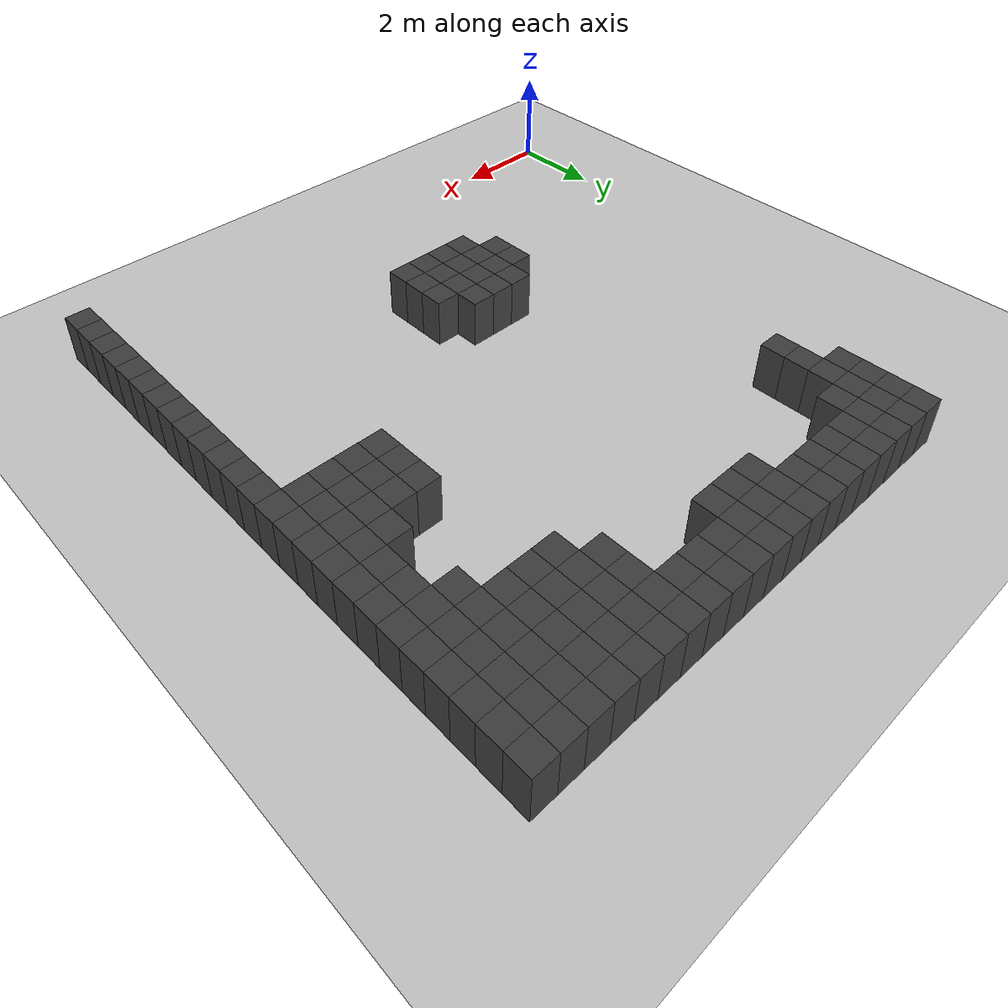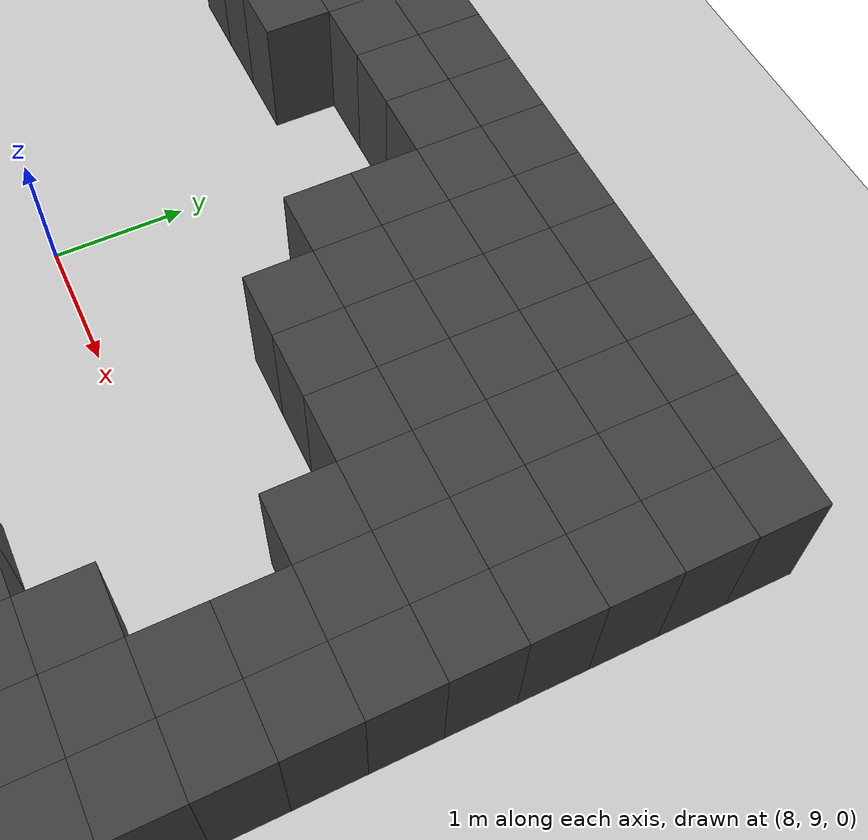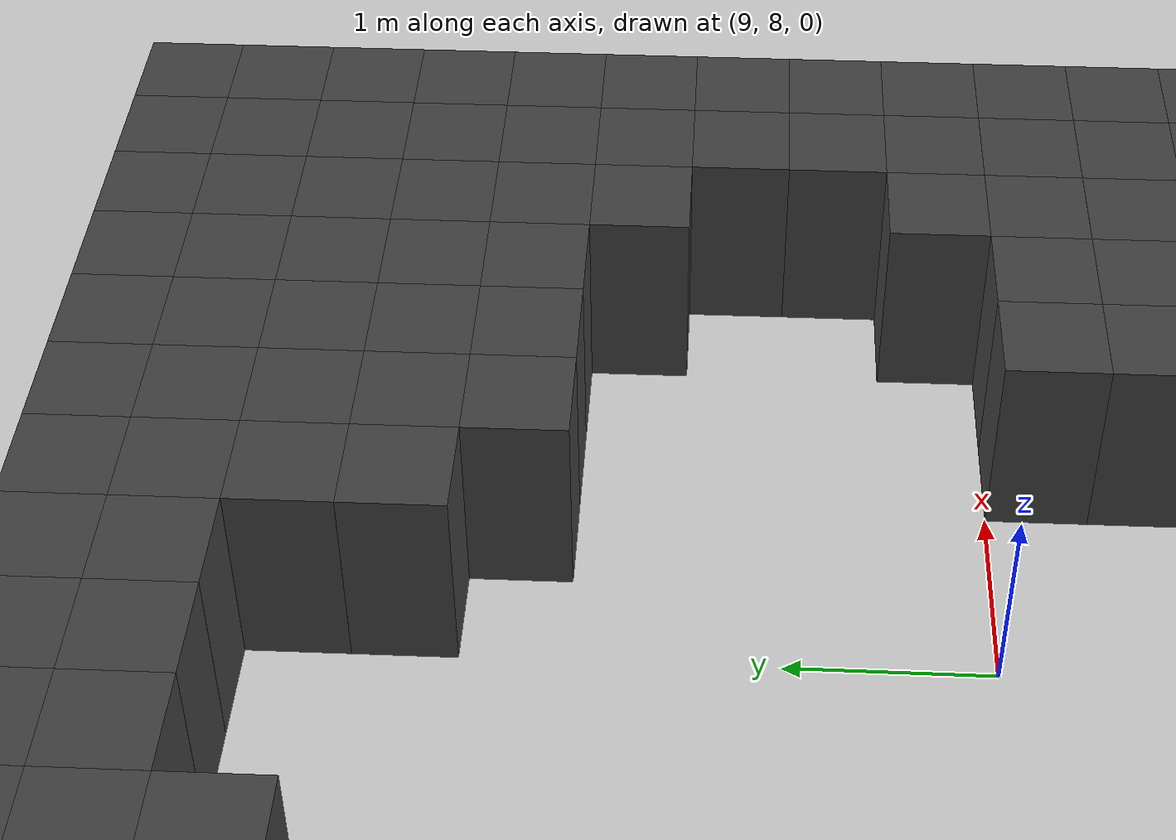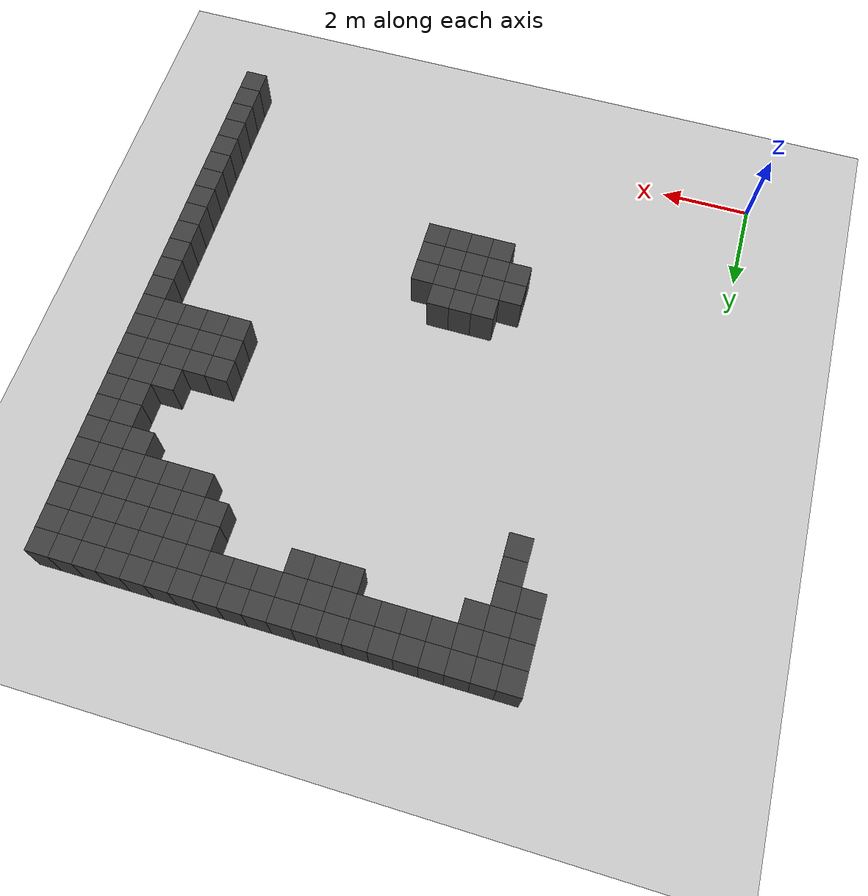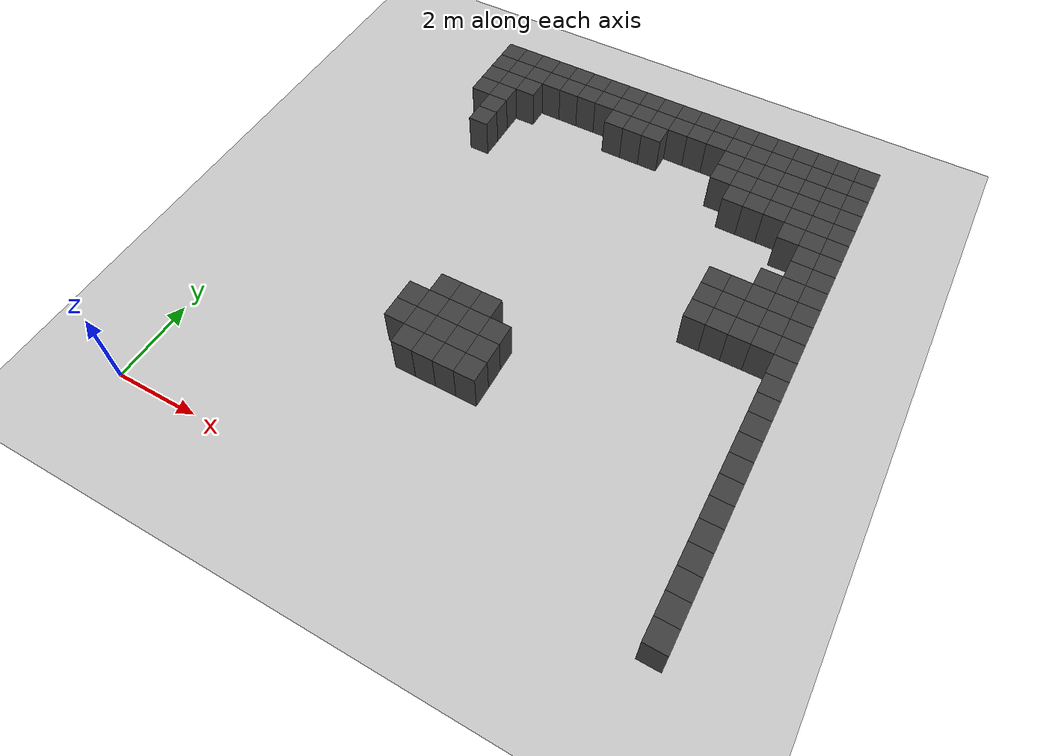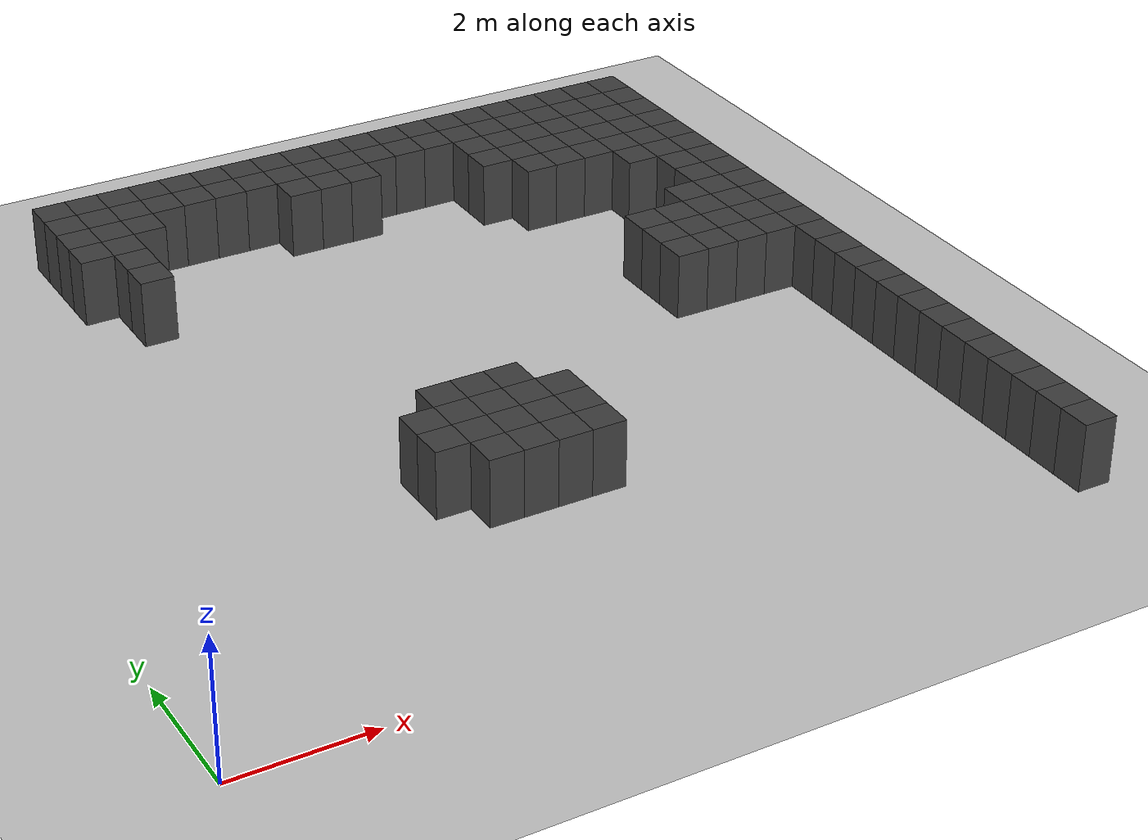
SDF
<sdf version="1.7">
 <world name="map_9082">
  <model name="ground_plane">
   <static>true</static>
   <link name="link">
    <collision name="collision">
     <geometry><plane><normal>0 0 1</normal><size>200 200</size></plane></geometry>
    </collision>
    <visual name="visual">
     <geometry><plane><normal>0 0 1</normal><size>200 200</size></plane></geometry>
     <material><ambient>0.8 0.8 0.8 1</ambient><diffuse>0.8 0.8 0.8 1</diffuse></material>
    </visual>
   </link>
  </model>
  <model name="maze_environment">
   <static>true</static>
   <link name="wall_30">
    <pose>2.750 12.250 0.500 0 0 0</pose>
    <collision name="col"><geometry><box><size>0.5 0.5 1.0</size></box></geometry></collision>
    <visual name="vis">
     <geometry><box><size>0.5 0.5 1.0</size></box></geometry>
     <material><ambient>0.15 0.15 0.15 1</ambient><diffuse>0.25 0.25 0.25 1</diffuse></material>
    </visual>
   </link>
   <link name="wall_31">
    <pose>3.250 12.250 0.500 0 0 0</pose>
    <collision name="col"><geometry><box><size>0.5 0.5 1.0</size></box></geometry></collision>
    <visual name="vis">
     <geometry><box><size>0.5 0.5 1.0</size></box></geometry>
     <material><ambient>0.15 0.15 0.15 1</ambient><diffuse>0.25 0.25 0.25 1</diffuse></material>
    </visual>
   </link>
   <link name="wall_32">
    <pose>3.750 12.250 0.500 0 0 0</pose>
    <collision name="col"><geometry><box><size>0.5 0.5 1.0</size></box></geometry></collision>
    <visual name="vis">
     <geometry><box><size>0.5 0.5 1.0</size></box></geometry>
     <material><ambient>0.15 0.15 0.15 1</ambient><diffuse>0.25 0.25 0.25 1</diffuse></material>
    </visual>
   </link>
   <link name="wall_33">
    <pose>4.250 12.250 0.500 0 0 0</pose>
    <collision name="col"><geometry><box><size>0.5 0.5 1.0</size></box></geometry></collision>
    <visual name="vis">
     <geometry><box><size>0.5 0.5 1.0</size></box></geometry>
     <material><ambient>0.15 0.15 0.15 1</ambient><diffuse>0.25 0.25 0.25 1</diffuse></material>
    </visual>
   </link>
   <link name="wall_34">
    <pose>4.750 12.250 0.500 0 0 0</pose>
    <collision name="col"><geometry><box><size>0.5 0.5 1.0</size></box></geometry></collision>
    <visual name="vis">
     <geometry><box><size>0.5 0.5 1.0</size></box></geometry>
     <material><ambient>0.15 0.15 0.15 1</ambient><diffuse>0.25 0.25 0.25 1</diffuse></material>
    </visual>
   </link>
   <link name="wall_35">
    <pose>5.250 12.250 0.500 0 0 0</pose>
    <collision name="col"><geometry><box><size>0.5 0.5 1.0</size></box></geometry></collision>
    <visual name="vis">
     <geometry><box><size>0.5 0.5 1.0</size></box></geometry>
     <material><ambient>0.15 0.15 0.15 1</ambient><diffuse>0.25 0.25 0.25 1</diffuse></material>
    </visual>
   </link>
   <link name="wall_36">
    <pose>5.750 12.250 0.500 0 0 0</pose>
    <collision name="col"><geometry><box><size>0.5 0.5 1.0</size></box></geometry></collision>
    <visual name="vis">
     <geometry><box><size>0.5 0.5 1.0</size></box></geometry>
     <material><ambient>0.15 0.15 0.15 1</ambient><diffuse>0.25 0.25 0.25 1</diffuse></material>
    </visual>
   </link>
   <link name="wall_37">
    <pose>6.250 12.250 0.500 0 0 0</pose>
    <collision name="col"><geometry><box><size>0.5 0.5 1.0</size></box></geometry></collision>
    <visual name="vis">
     <geometry><box><size>0.5 0.5 1.0</size></box></geometry>
     <material><ambient>0.15 0.15 0.15 1</ambient><diffuse>0.25 0.25 0.25 1</diffuse></material>
    </visual>
   </link>
   <link name="wall_38">
    <pose>6.750 12.250 0.500 0 0 0</pose>
    <collision name="col"><geometry><box><size>0.5 0.5 1.0</size></box></geometry></collision>
    <visual name="vis">
     <geometry><box><size>0.5 0.5 1.0</size></box></geometry>
     <material><ambient>0.15 0.15 0.15 1</ambient><diffuse>0.25 0.25 0.25 1</diffuse></material>
    </visual>
   </link>
   <link name="wall_39">
    <pose>7.250 12.250 0.500 0 0 0</pose>
    <collision name="col"><geometry><box><size>0.5 0.5 1.0</size></box></geometry></collision>
    <visual name="vis">
     <geometry><box><size>0.5 0.5 1.0</size></box></geometry>
     <material><ambient>0.15 0.15 0.15 1</ambient><diffuse>0.25 0.25 0.25 1</diffuse></material>
    </visual>
   </link>
   <link name="wall_40">
    <pose>7.750 12.250 0.500 0 0 0</pose>
    <collision name="col"><geometry><box><size>0.5 0.5 1.0</size></box></geometry></collision>
    <visual name="vis">
     <geometry><box><size>0.5 0.5 1.0</size></box></geometry>
     <material><ambient>0.15 0.15 0.15 1</ambient><diffuse>0.25 0.25 0.25 1</diffuse></material>
    </visual>
   </link>
   <link name="wall_41">
    <pose>8.250 12.250 0.500 0 0 0</pose>
    <collision name="col"><geometry><box><size>0.5 0.5 1.0</size></box></geometry></collision>
    <visual name="vis">
     <geometry><box><size>0.5 0.5 1.0</size></box></geometry>
     <material><ambient>0.15 0.15 0.15 1</ambient><diffuse>0.25 0.25 0.25 1</diffuse></material>
    </visual>
   </link>
   <link name="wall_42">
    <pose>8.750 12.250 0.500 0 0 0</pose>
    <collision name="col"><geometry><box><size>0.5 0.5 1.0</size></box></geometry></collision>
    <visual name="vis">
     <geometry><box><size>0.5 0.5 1.0</size></box></geometry>
     <material><ambient>0.15 0.15 0.15 1</ambient><diffuse>0.25 0.25 0.25 1</diffuse></material>
    </visual>
   </link>
   <link name="wall_43">
    <pose>9.250 12.250 0.500 0 0 0</pose>
    <collision name="col"><geometry><box><size>0.5 0.5 1.0</size></box></geometry></collision>
    <visual name="vis">
     <geometry><box><size>0.5 0.5 1.0</size></box></geometry>
     <material><ambient>0.15 0.15 0.15 1</ambient><diffuse>0.25 0.25 0.25 1</diffuse></material>
    </visual>
   </link>
   <link name="wall_44">
    <pose>9.750 12.250 0.500 0 0 0</pose>
    <collision name="col"><geometry><box><size>0.5 0.5 1.0</size></box></geometry></collision>
    <visual name="vis">
     <geometry><box><size>0.5 0.5 1.0</size></box></geometry>
     <material><ambient>0.15 0.15 0.15 1</ambient><diffuse>0.25 0.25 0.25 1</diffuse></material>
    </visual>
   </link>
   <link name="wall_45">
    <pose>10.250 12.250 0.500 0 0 0</pose>
    <collision name="col"><geometry><box><size>0.5 0.5 1.0</size></box></geometry></collision>
    <visual name="vis">
     <geometry><box><size>0.5 0.5 1.0</size></box></geometry>
     <material><ambient>0.15 0.15 0.15 1</ambient><diffuse>0.25 0.25 0.25 1</diffuse></material>
    </visual>
   </link>
   <link name="wall_46">
    <pose>10.750 12.250 0.500 0 0 0</pose>
    <collision name="col"><geometry><box><size>0.5 0.5 1.0</size></box></geometry></collision>
    <visual name="vis">
     <geometry><box><size>0.5 0.5 1.0</size></box></geometry>
     <material><ambient>0.15 0.15 0.15 1</ambient><diffuse>0.25 0.25 0.25 1</diffuse></material>
    </visual>
   </link>
   <link name="wall_47">
    <pose>11.250 12.250 0.500 0 0 0</pose>
    <collision name="col"><geometry><box><size>0.5 0.5 1.0</size></box></geometry></collision>
    <visual name="vis">
     <geometry><box><size>0.5 0.5 1.0</size></box></geometry>
     <material><ambient>0.15 0.15 0.15 1</ambient><diffuse>0.25 0.25 0.25 1</diffuse></material>
    </visual>
   </link>
   <link name="wall_48">
    <pose>11.750 12.250 0.500 0 0 0</pose>
    <collision name="col"><geometry><box><size>0.5 0.5 1.0</size></box></geometry></collision>
    <visual name="vis">
     <geometry><box><size>0.5 0.5 1.0</size></box></geometry>
     <material><ambient>0.15 0.15 0.15 1</ambient><diffuse>0.25 0.25 0.25 1</diffuse></material>
    </visual>
   </link>
   <link name="wall_49">
    <pose>12.250 12.250 0.500 0 0 0</pose>
    <collision name="col"><geometry><box><size>0.5 0.5 1.0</size></box></geometry></collision>
    <visual name="vis">
     <geometry><box><size>0.5 0.5 1.0</size></box></geometry>
     <material><ambient>0.15 0.15 0.15 1</ambient><diffuse>0.25 0.25 0.25 1</diffuse></material>
    </visual>
   </link>
   <link name="wall_77">
    <pose>2.750 11.750 0.500 0 0 0</pose>
    <collision name="col"><geometry><box><size>0.5 0.5 1.0</size></box></geometry></collision>
    <visual name="vis">
     <geometry><box><size>0.5 0.5 1.0</size></box></geometry>
     <material><ambient>0.15 0.15 0.15 1</ambient><diffuse>0.25 0.25 0.25 1</diffuse></material>
    </visual>
   </link>
   <link name="wall_78">
    <pose>3.250 11.750 0.500 0 0 0</pose>
    <collision name="col"><geometry><box><size>0.5 0.5 1.0</size></box></geometry></collision>
    <visual name="vis">
     <geometry><box><size>0.5 0.5 1.0</size></box></geometry>
     <material><ambient>0.15 0.15 0.15 1</ambient><diffuse>0.25 0.25 0.25 1</diffuse></material>
    </visual>
   </link>
   <link name="wall_79">
    <pose>3.750 11.750 0.500 0 0 0</pose>
    <collision name="col"><geometry><box><size>0.5 0.5 1.0</size></box></geometry></collision>
    <visual name="vis">
     <geometry><box><size>0.5 0.5 1.0</size></box></geometry>
     <material><ambient>0.15 0.15 0.15 1</ambient><diffuse>0.25 0.25 0.25 1</diffuse></material>
    </visual>
   </link>
   <link name="wall_80">
    <pose>4.250 11.750 0.500 0 0 0</pose>
    <collision name="col"><geometry><box><size>0.5 0.5 1.0</size></box></geometry></collision>
    <visual name="vis">
     <geometry><box><size>0.5 0.5 1.0</size></box></geometry>
     <material><ambient>0.15 0.15 0.15 1</ambient><diffuse>0.25 0.25 0.25 1</diffuse></material>
    </visual>
   </link>
   <link name="wall_81">
    <pose>4.750 11.750 0.500 0 0 0</pose>
    <collision name="col"><geometry><box><size>0.5 0.5 1.0</size></box></geometry></collision>
    <visual name="vis">
     <geometry><box><size>0.5 0.5 1.0</size></box></geometry>
     <material><ambient>0.15 0.15 0.15 1</ambient><diffuse>0.25 0.25 0.25 1</diffuse></material>
    </visual>
   </link>
   <link name="wall_82">
    <pose>5.250 11.750 0.500 0 0 0</pose>
    <collision name="col"><geometry><box><size>0.5 0.5 1.0</size></box></geometry></collision>
    <visual name="vis">
     <geometry><box><size>0.5 0.5 1.0</size></box></geometry>
     <material><ambient>0.15 0.15 0.15 1</ambient><diffuse>0.25 0.25 0.25 1</diffuse></material>
    </visual>
   </link>
   <link name="wall_83">
    <pose>5.750 11.750 0.500 0 0 0</pose>
    <collision name="col"><geometry><box><size>0.5 0.5 1.0</size></box></geometry></collision>
    <visual name="vis">
     <geometry><box><size>0.5 0.5 1.0</size></box></geometry>
     <material><ambient>0.15 0.15 0.15 1</ambient><diffuse>0.25 0.25 0.25 1</diffuse></material>
    </visual>
   </link>
   <link name="wall_84">
    <pose>6.250 11.750 0.500 0 0 0</pose>
    <collision name="col"><geometry><box><size>0.5 0.5 1.0</size></box></geometry></collision>
    <visual name="vis">
     <geometry><box><size>0.5 0.5 1.0</size></box></geometry>
     <material><ambient>0.15 0.15 0.15 1</ambient><diffuse>0.25 0.25 0.25 1</diffuse></material>
    </visual>
   </link>
   <link name="wall_85">
    <pose>6.750 11.750 0.500 0 0 0</pose>
    <collision name="col"><geometry><box><size>0.5 0.5 1.0</size></box></geometry></collision>
    <visual name="vis">
     <geometry><box><size>0.5 0.5 1.0</size></box></geometry>
     <material><ambient>0.15 0.15 0.15 1</ambient><diffuse>0.25 0.25 0.25 1</diffuse></material>
    </visual>
   </link>
   <link name="wall_86">
    <pose>7.250 11.750 0.500 0 0 0</pose>
    <collision name="col"><geometry><box><size>0.5 0.5 1.0</size></box></geometry></collision>
    <visual name="vis">
     <geometry><box><size>0.5 0.5 1.0</size></box></geometry>
     <material><ambient>0.15 0.15 0.15 1</ambient><diffuse>0.25 0.25 0.25 1</diffuse></material>
    </visual>
   </link>
   <link name="wall_87">
    <pose>7.750 11.750 0.500 0 0 0</pose>
    <collision name="col"><geometry><box><size>0.5 0.5 1.0</size></box></geometry></collision>
    <visual name="vis">
     <geometry><box><size>0.5 0.5 1.0</size></box></geometry>
     <material><ambient>0.15 0.15 0.15 1</ambient><diffuse>0.25 0.25 0.25 1</diffuse></material>
    </visual>
   </link>
   <link name="wall_88">
    <pose>8.250 11.750 0.500 0 0 0</pose>
    <collision name="col"><geometry><box><size>0.5 0.5 1.0</size></box></geometry></collision>
    <visual name="vis">
     <geometry><box><size>0.5 0.5 1.0</size></box></geometry>
     <material><ambient>0.15 0.15 0.15 1</ambient><diffuse>0.25 0.25 0.25 1</diffuse></material>
    </visual>
   </link>
   <link name="wall_89">
    <pose>8.750 11.750 0.500 0 0 0</pose>
    <collision name="col"><geometry><box><size>0.5 0.5 1.0</size></box></geometry></collision>
    <visual name="vis">
     <geometry><box><size>0.5 0.5 1.0</size></box></geometry>
     <material><ambient>0.15 0.15 0.15 1</ambient><diffuse>0.25 0.25 0.25 1</diffuse></material>
    </visual>
   </link>
   <link name="wall_90">
    <pose>9.250 11.750 0.500 0 0 0</pose>
    <collision name="col"><geometry><box><size>0.5 0.5 1.0</size></box></geometry></collision>
    <visual name="vis">
     <geometry><box><size>0.5 0.5 1.0</size></box></geometry>
     <material><ambient>0.15 0.15 0.15 1</ambient><diffuse>0.25 0.25 0.25 1</diffuse></material>
    </visual>
   </link>
   <link name="wall_91">
    <pose>9.750 11.750 0.500 0 0 0</pose>
    <collision name="col"><geometry><box><size>0.5 0.5 1.0</size></box></geometry></collision>
    <visual name="vis">
     <geometry><box><size>0.5 0.5 1.0</size></box></geometry>
     <material><ambient>0.15 0.15 0.15 1</ambient><diffuse>0.25 0.25 0.25 1</diffuse></material>
    </visual>
   </link>
   <link name="wall_92">
    <pose>10.250 11.750 0.500 0 0 0</pose>
    <collision name="col"><geometry><box><size>0.5 0.5 1.0</size></box></geometry></collision>
    <visual name="vis">
     <geometry><box><size>0.5 0.5 1.0</size></box></geometry>
     <material><ambient>0.15 0.15 0.15 1</ambient><diffuse>0.25 0.25 0.25 1</diffuse></material>
    </visual>
   </link>
   <link name="wall_93">
    <pose>10.750 11.750 0.500 0 0 0</pose>
    <collision name="col"><geometry><box><size>0.5 0.5 1.0</size></box></geometry></collision>
    <visual name="vis">
     <geometry><box><size>0.5 0.5 1.0</size></box></geometry>
     <material><ambient>0.15 0.15 0.15 1</ambient><diffuse>0.25 0.25 0.25 1</diffuse></material>
    </visual>
   </link>
   <link name="wall_94">
    <pose>11.250 11.750 0.500 0 0 0</pose>
    <collision name="col"><geometry><box><size>0.5 0.5 1.0</size></box></geometry></collision>
    <visual name="vis">
     <geometry><box><size>0.5 0.5 1.0</size></box></geometry>
     <material><ambient>0.15 0.15 0.15 1</ambient><diffuse>0.25 0.25 0.25 1</diffuse></material>
    </visual>
   </link>
   <link name="wall_95">
    <pose>11.750 11.750 0.500 0 0 0</pose>
    <collision name="col"><geometry><box><size>0.5 0.5 1.0</size></box></geometry></collision>
    <visual name="vis">
     <geometry><box><size>0.5 0.5 1.0</size></box></geometry>
     <material><ambient>0.15 0.15 0.15 1</ambient><diffuse>0.25 0.25 0.25 1</diffuse></material>
    </visual>
   </link>
   <link name="wall_96">
    <pose>12.250 11.750 0.500 0 0 0</pose>
    <collision name="col"><geometry><box><size>0.5 0.5 1.0</size></box></geometry></collision>
    <visual name="vis">
     <geometry><box><size>0.5 0.5 1.0</size></box></geometry>
     <material><ambient>0.15 0.15 0.15 1</ambient><diffuse>0.25 0.25 0.25 1</diffuse></material>
    </visual>
   </link>
   <link name="wall_118">
    <pose>2.750 11.250 0.500 0 0 0</pose>
    <collision name="col"><geometry><box><size>0.5 0.5 1.0</size></box></geometry></collision>
    <visual name="vis">
     <geometry><box><size>0.5 0.5 1.0</size></box></geometry>
     <material><ambient>0.15 0.15 0.15 1</ambient><diffuse>0.25 0.25 0.25 1</diffuse></material>
    </visual>
   </link>
   <link name="wall_119">
    <pose>3.250 11.250 0.500 0 0 0</pose>
    <collision name="col"><geometry><box><size>0.5 0.5 1.0</size></box></geometry></collision>
    <visual name="vis">
     <geometry><box><size>0.5 0.5 1.0</size></box></geometry>
     <material><ambient>0.15 0.15 0.15 1</ambient><diffuse>0.25 0.25 0.25 1</diffuse></material>
    </visual>
   </link>
   <link name="wall_120">
    <pose>3.750 11.250 0.500 0 0 0</pose>
    <collision name="col"><geometry><box><size>0.5 0.5 1.0</size></box></geometry></collision>
    <visual name="vis">
     <geometry><box><size>0.5 0.5 1.0</size></box></geometry>
     <material><ambient>0.15 0.15 0.15 1</ambient><diffuse>0.25 0.25 0.25 1</diffuse></material>
    </visual>
   </link>
   <link name="wall_121">
    <pose>6.250 11.250 0.500 0 0 0</pose>
    <collision name="col"><geometry><box><size>0.5 0.5 1.0</size></box></geometry></collision>
    <visual name="vis">
     <geometry><box><size>0.5 0.5 1.0</size></box></geometry>
     <material><ambient>0.15 0.15 0.15 1</ambient><diffuse>0.25 0.25 0.25 1</diffuse></material>
    </visual>
   </link>
   <link name="wall_122">
    <pose>6.750 11.250 0.500 0 0 0</pose>
    <collision name="col"><geometry><box><size>0.5 0.5 1.0</size></box></geometry></collision>
    <visual name="vis">
     <geometry><box><size>0.5 0.5 1.0</size></box></geometry>
     <material><ambient>0.15 0.15 0.15 1</ambient><diffuse>0.25 0.25 0.25 1</diffuse></material>
    </visual>
   </link>
   <link name="wall_123">
    <pose>7.250 11.250 0.500 0 0 0</pose>
    <collision name="col"><geometry><box><size>0.5 0.5 1.0</size></box></geometry></collision>
    <visual name="vis">
     <geometry><box><size>0.5 0.5 1.0</size></box></geometry>
     <material><ambient>0.15 0.15 0.15 1</ambient><diffuse>0.25 0.25 0.25 1</diffuse></material>
    </visual>
   </link>
   <link name="wall_124">
    <pose>9.250 11.250 0.500 0 0 0</pose>
    <collision name="col"><geometry><box><size>0.5 0.5 1.0</size></box></geometry></collision>
    <visual name="vis">
     <geometry><box><size>0.5 0.5 1.0</size></box></geometry>
     <material><ambient>0.15 0.15 0.15 1</ambient><diffuse>0.25 0.25 0.25 1</diffuse></material>
    </visual>
   </link>
   <link name="wall_125">
    <pose>9.750 11.250 0.500 0 0 0</pose>
    <collision name="col"><geometry><box><size>0.5 0.5 1.0</size></box></geometry></collision>
    <visual name="vis">
     <geometry><box><size>0.5 0.5 1.0</size></box></geometry>
     <material><ambient>0.15 0.15 0.15 1</ambient><diffuse>0.25 0.25 0.25 1</diffuse></material>
    </visual>
   </link>
   <link name="wall_126">
    <pose>10.250 11.250 0.500 0 0 0</pose>
    <collision name="col"><geometry><box><size>0.5 0.5 1.0</size></box></geometry></collision>
    <visual name="vis">
     <geometry><box><size>0.5 0.5 1.0</size></box></geometry>
     <material><ambient>0.15 0.15 0.15 1</ambient><diffuse>0.25 0.25 0.25 1</diffuse></material>
    </visual>
   </link>
   <link name="wall_127">
    <pose>10.750 11.250 0.500 0 0 0</pose>
    <collision name="col"><geometry><box><size>0.5 0.5 1.0</size></box></geometry></collision>
    <visual name="vis">
     <geometry><box><size>0.5 0.5 1.0</size></box></geometry>
     <material><ambient>0.15 0.15 0.15 1</ambient><diffuse>0.25 0.25 0.25 1</diffuse></material>
    </visual>
   </link>
   <link name="wall_128">
    <pose>11.250 11.250 0.500 0 0 0</pose>
    <collision name="col"><geometry><box><size>0.5 0.5 1.0</size></box></geometry></collision>
    <visual name="vis">
     <geometry><box><size>0.5 0.5 1.0</size></box></geometry>
     <material><ambient>0.15 0.15 0.15 1</ambient><diffuse>0.25 0.25 0.25 1</diffuse></material>
    </visual>
   </link>
   <link name="wall_129">
    <pose>11.750 11.250 0.500 0 0 0</pose>
    <collision name="col"><geometry><box><size>0.5 0.5 1.0</size></box></geometry></collision>
    <visual name="vis">
     <geometry><box><size>0.5 0.5 1.0</size></box></geometry>
     <material><ambient>0.15 0.15 0.15 1</ambient><diffuse>0.25 0.25 0.25 1</diffuse></material>
    </visual>
   </link>
   <link name="wall_130">
    <pose>12.250 11.250 0.500 0 0 0</pose>
    <collision name="col"><geometry><box><size>0.5 0.5 1.0</size></box></geometry></collision>
    <visual name="vis">
     <geometry><box><size>0.5 0.5 1.0</size></box></geometry>
     <material><ambient>0.15 0.15 0.15 1</ambient><diffuse>0.25 0.25 0.25 1</diffuse></material>
    </visual>
   </link>
   <link name="wall_145">
    <pose>2.750 10.750 0.500 0 0 0</pose>
    <collision name="col"><geometry><box><size>0.5 0.5 1.0</size></box></geometry></collision>
    <visual name="vis">
     <geometry><box><size>0.5 0.5 1.0</size></box></geometry>
     <material><ambient>0.15 0.15 0.15 1</ambient><diffuse>0.25 0.25 0.25 1</diffuse></material>
    </visual>
   </link>
   <link name="wall_146">
    <pose>3.250 10.750 0.500 0 0 0</pose>
    <collision name="col"><geometry><box><size>0.5 0.5 1.0</size></box></geometry></collision>
    <visual name="vis">
     <geometry><box><size>0.5 0.5 1.0</size></box></geometry>
     <material><ambient>0.15 0.15 0.15 1</ambient><diffuse>0.25 0.25 0.25 1</diffuse></material>
    </visual>
   </link>
   <link name="wall_147">
    <pose>9.250 10.750 0.500 0 0 0</pose>
    <collision name="col"><geometry><box><size>0.5 0.5 1.0</size></box></geometry></collision>
    <visual name="vis">
     <geometry><box><size>0.5 0.5 1.0</size></box></geometry>
     <material><ambient>0.15 0.15 0.15 1</ambient><diffuse>0.25 0.25 0.25 1</diffuse></material>
    </visual>
   </link>
   <link name="wall_148">
    <pose>9.750 10.750 0.500 0 0 0</pose>
    <collision name="col"><geometry><box><size>0.5 0.5 1.0</size></box></geometry></collision>
    <visual name="vis">
     <geometry><box><size>0.5 0.5 1.0</size></box></geometry>
     <material><ambient>0.15 0.15 0.15 1</ambient><diffuse>0.25 0.25 0.25 1</diffuse></material>
    </visual>
   </link>
   <link name="wall_149">
    <pose>10.250 10.750 0.500 0 0 0</pose>
    <collision name="col"><geometry><box><size>0.5 0.5 1.0</size></box></geometry></collision>
    <visual name="vis">
     <geometry><box><size>0.5 0.5 1.0</size></box></geometry>
     <material><ambient>0.15 0.15 0.15 1</ambient><diffuse>0.25 0.25 0.25 1</diffuse></material>
    </visual>
   </link>
   <link name="wall_150">
    <pose>10.750 10.750 0.500 0 0 0</pose>
    <collision name="col"><geometry><box><size>0.5 0.5 1.0</size></box></geometry></collision>
    <visual name="vis">
     <geometry><box><size>0.5 0.5 1.0</size></box></geometry>
     <material><ambient>0.15 0.15 0.15 1</ambient><diffuse>0.25 0.25 0.25 1</diffuse></material>
    </visual>
   </link>
   <link name="wall_151">
    <pose>11.250 10.750 0.500 0 0 0</pose>
    <collision name="col"><geometry><box><size>0.5 0.5 1.0</size></box></geometry></collision>
    <visual name="vis">
     <geometry><box><size>0.5 0.5 1.0</size></box></geometry>
     <material><ambient>0.15 0.15 0.15 1</ambient><diffuse>0.25 0.25 0.25 1</diffuse></material>
    </visual>
   </link>
   <link name="wall_152">
    <pose>11.750 10.750 0.500 0 0 0</pose>
    <collision name="col"><geometry><box><size>0.5 0.5 1.0</size></box></geometry></collision>
    <visual name="vis">
     <geometry><box><size>0.5 0.5 1.0</size></box></geometry>
     <material><ambient>0.15 0.15 0.15 1</ambient><diffuse>0.25 0.25 0.25 1</diffuse></material>
    </visual>
   </link>
   <link name="wall_153">
    <pose>12.250 10.750 0.500 0 0 0</pose>
    <collision name="col"><geometry><box><size>0.5 0.5 1.0</size></box></geometry></collision>
    <visual name="vis">
     <geometry><box><size>0.5 0.5 1.0</size></box></geometry>
     <material><ambient>0.15 0.15 0.15 1</ambient><diffuse>0.25 0.25 0.25 1</diffuse></material>
    </visual>
   </link>
   <link name="wall_167">
    <pose>3.250 10.250 0.500 0 0 0</pose>
    <collision name="col"><geometry><box><size>0.5 0.5 1.0</size></box></geometry></collision>
    <visual name="vis">
     <geometry><box><size>0.5 0.5 1.0</size></box></geometry>
     <material><ambient>0.15 0.15 0.15 1</ambient><diffuse>0.25 0.25 0.25 1</diffuse></material>
    </visual>
   </link>
   <link name="wall_168">
    <pose>9.750 10.250 0.500 0 0 0</pose>
    <collision name="col"><geometry><box><size>0.5 0.5 1.0</size></box></geometry></collision>
    <visual name="vis">
     <geometry><box><size>0.5 0.5 1.0</size></box></geometry>
     <material><ambient>0.15 0.15 0.15 1</ambient><diffuse>0.25 0.25 0.25 1</diffuse></material>
    </visual>
   </link>
   <link name="wall_169">
    <pose>10.250 10.250 0.500 0 0 0</pose>
    <collision name="col"><geometry><box><size>0.5 0.5 1.0</size></box></geometry></collision>
    <visual name="vis">
     <geometry><box><size>0.5 0.5 1.0</size></box></geometry>
     <material><ambient>0.15 0.15 0.15 1</ambient><diffuse>0.25 0.25 0.25 1</diffuse></material>
    </visual>
   </link>
   <link name="wall_170">
    <pose>10.750 10.250 0.500 0 0 0</pose>
    <collision name="col"><geometry><box><size>0.5 0.5 1.0</size></box></geometry></collision>
    <visual name="vis">
     <geometry><box><size>0.5 0.5 1.0</size></box></geometry>
     <material><ambient>0.15 0.15 0.15 1</ambient><diffuse>0.25 0.25 0.25 1</diffuse></material>
    </visual>
   </link>
   <link name="wall_171">
    <pose>11.250 10.250 0.500 0 0 0</pose>
    <collision name="col"><geometry><box><size>0.5 0.5 1.0</size></box></geometry></collision>
    <visual name="vis">
     <geometry><box><size>0.5 0.5 1.0</size></box></geometry>
     <material><ambient>0.15 0.15 0.15 1</ambient><diffuse>0.25 0.25 0.25 1</diffuse></material>
    </visual>
   </link>
   <link name="wall_172">
    <pose>11.750 10.250 0.500 0 0 0</pose>
    <collision name="col"><geometry><box><size>0.5 0.5 1.0</size></box></geometry></collision>
    <visual name="vis">
     <geometry><box><size>0.5 0.5 1.0</size></box></geometry>
     <material><ambient>0.15 0.15 0.15 1</ambient><diffuse>0.25 0.25 0.25 1</diffuse></material>
    </visual>
   </link>
   <link name="wall_173">
    <pose>12.250 10.250 0.500 0 0 0</pose>
    <collision name="col"><geometry><box><size>0.5 0.5 1.0</size></box></geometry></collision>
    <visual name="vis">
     <geometry><box><size>0.5 0.5 1.0</size></box></geometry>
     <material><ambient>0.15 0.15 0.15 1</ambient><diffuse>0.25 0.25 0.25 1</diffuse></material>
    </visual>
   </link>
   <link name="wall_186">
    <pose>3.250 9.750 0.500 0 0 0</pose>
    <collision name="col"><geometry><box><size>0.5 0.5 1.0</size></box></geometry></collision>
    <visual name="vis">
     <geometry><box><size>0.5 0.5 1.0</size></box></geometry>
     <material><ambient>0.15 0.15 0.15 1</ambient><diffuse>0.25 0.25 0.25 1</diffuse></material>
    </visual>
   </link>
   <link name="wall_187">
    <pose>11.250 9.750 0.500 0 0 0</pose>
    <collision name="col"><geometry><box><size>0.5 0.5 1.0</size></box></geometry></collision>
    <visual name="vis">
     <geometry><box><size>0.5 0.5 1.0</size></box></geometry>
     <material><ambient>0.15 0.15 0.15 1</ambient><diffuse>0.25 0.25 0.25 1</diffuse></material>
    </visual>
   </link>
   <link name="wall_188">
    <pose>11.750 9.750 0.500 0 0 0</pose>
    <collision name="col"><geometry><box><size>0.5 0.5 1.0</size></box></geometry></collision>
    <visual name="vis">
     <geometry><box><size>0.5 0.5 1.0</size></box></geometry>
     <material><ambient>0.15 0.15 0.15 1</ambient><diffuse>0.25 0.25 0.25 1</diffuse></material>
    </visual>
   </link>
   <link name="wall_189">
    <pose>12.250 9.750 0.500 0 0 0</pose>
    <collision name="col"><geometry><box><size>0.5 0.5 1.0</size></box></geometry></collision>
    <visual name="vis">
     <geometry><box><size>0.5 0.5 1.0</size></box></geometry>
     <material><ambient>0.15 0.15 0.15 1</ambient><diffuse>0.25 0.25 0.25 1</diffuse></material>
    </visual>
   </link>
   <link name="wall_200">
    <pose>11.750 9.250 0.500 0 0 0</pose>
    <collision name="col"><geometry><box><size>0.5 0.5 1.0</size></box></geometry></collision>
    <visual name="vis">
     <geometry><box><size>0.5 0.5 1.0</size></box></geometry>
     <material><ambient>0.15 0.15 0.15 1</ambient><diffuse>0.25 0.25 0.25 1</diffuse></material>
    </visual>
   </link>
   <link name="wall_201">
    <pose>12.250 9.250 0.500 0 0 0</pose>
    <collision name="col"><geometry><box><size>0.5 0.5 1.0</size></box></geometry></collision>
    <visual name="vis">
     <geometry><box><size>0.5 0.5 1.0</size></box></geometry>
     <material><ambient>0.15 0.15 0.15 1</ambient><diffuse>0.25 0.25 0.25 1</diffuse></material>
    </visual>
   </link>
   <link name="wall_213">
    <pose>11.750 8.750 0.500 0 0 0</pose>
    <collision name="col"><geometry><box><size>0.5 0.5 1.0</size></box></geometry></collision>
    <visual name="vis">
     <geometry><box><size>0.5 0.5 1.0</size></box></geometry>
     <material><ambient>0.15 0.15 0.15 1</ambient><diffuse>0.25 0.25 0.25 1</diffuse></material>
    </visual>
   </link>
   <link name="wall_214">
    <pose>12.250 8.750 0.500 0 0 0</pose>
    <collision name="col"><geometry><box><size>0.5 0.5 1.0</size></box></geometry></collision>
    <visual name="vis">
     <geometry><box><size>0.5 0.5 1.0</size></box></geometry>
     <material><ambient>0.15 0.15 0.15 1</ambient><diffuse>0.25 0.25 0.25 1</diffuse></material>
    </visual>
   </link>
   <link name="wall_226">
    <pose>11.250 8.250 0.500 0 0 0</pose>
    <collision name="col"><geometry><box><size>0.5 0.5 1.0</size></box></geometry></collision>
    <visual name="vis">
     <geometry><box><size>0.5 0.5 1.0</size></box></geometry>
     <material><ambient>0.15 0.15 0.15 1</ambient><diffuse>0.25 0.25 0.25 1</diffuse></material>
    </visual>
   </link>
   <link name="wall_227">
    <pose>11.750 8.250 0.500 0 0 0</pose>
    <collision name="col"><geometry><box><size>0.5 0.5 1.0</size></box></geometry></collision>
    <visual name="vis">
     <geometry><box><size>0.5 0.5 1.0</size></box></geometry>
     <material><ambient>0.15 0.15 0.15 1</ambient><diffuse>0.25 0.25 0.25 1</diffuse></material>
    </visual>
   </link>
   <link name="wall_228">
    <pose>12.250 8.250 0.500 0 0 0</pose>
    <collision name="col"><geometry><box><size>0.5 0.5 1.0</size></box></geometry></collision>
    <visual name="vis">
     <geometry><box><size>0.5 0.5 1.0</size></box></geometry>
     <material><ambient>0.15 0.15 0.15 1</ambient><diffuse>0.25 0.25 0.25 1</diffuse></material>
    </visual>
   </link>
   <link name="wall_241">
    <pose>10.250 7.750 0.500 0 0 0</pose>
    <collision name="col"><geometry><box><size>0.5 0.5 1.0</size></box></geometry></collision>
    <visual name="vis">
     <geometry><box><size>0.5 0.5 1.0</size></box></geometry>
     <material><ambient>0.15 0.15 0.15 1</ambient><diffuse>0.25 0.25 0.25 1</diffuse></material>
    </visual>
   </link>
   <link name="wall_242">
    <pose>10.750 7.750 0.500 0 0 0</pose>
    <collision name="col"><geometry><box><size>0.5 0.5 1.0</size></box></geometry></collision>
    <visual name="vis">
     <geometry><box><size>0.5 0.5 1.0</size></box></geometry>
     <material><ambient>0.15 0.15 0.15 1</ambient><diffuse>0.25 0.25 0.25 1</diffuse></material>
    </visual>
   </link>
   <link name="wall_243">
    <pose>11.250 7.750 0.500 0 0 0</pose>
    <collision name="col"><geometry><box><size>0.5 0.5 1.0</size></box></geometry></collision>
    <visual name="vis">
     <geometry><box><size>0.5 0.5 1.0</size></box></geometry>
     <material><ambient>0.15 0.15 0.15 1</ambient><diffuse>0.25 0.25 0.25 1</diffuse></material>
    </visual>
   </link>
   <link name="wall_244">
    <pose>11.750 7.750 0.500 0 0 0</pose>
    <collision name="col"><geometry><box><size>0.5 0.5 1.0</size></box></geometry></collision>
    <visual name="vis">
     <geometry><box><size>0.5 0.5 1.0</size></box></geometry>
     <material><ambient>0.15 0.15 0.15 1</ambient><diffuse>0.25 0.25 0.25 1</diffuse></material>
    </visual>
   </link>
   <link name="wall_245">
    <pose>12.250 7.750 0.500 0 0 0</pose>
    <collision name="col"><geometry><box><size>0.5 0.5 1.0</size></box></geometry></collision>
    <visual name="vis">
     <geometry><box><size>0.5 0.5 1.0</size></box></geometry>
     <material><ambient>0.15 0.15 0.15 1</ambient><diffuse>0.25 0.25 0.25 1</diffuse></material>
    </visual>
   </link>
   <link name="wall_261">
    <pose>10.250 7.250 0.500 0 0 0</pose>
    <collision name="col"><geometry><box><size>0.5 0.5 1.0</size></box></geometry></collision>
    <visual name="vis">
     <geometry><box><size>0.5 0.5 1.0</size></box></geometry>
     <material><ambient>0.15 0.15 0.15 1</ambient><diffuse>0.25 0.25 0.25 1</diffuse></material>
    </visual>
   </link>
   <link name="wall_262">
    <pose>10.750 7.250 0.500 0 0 0</pose>
    <collision name="col"><geometry><box><size>0.5 0.5 1.0</size></box></geometry></collision>
    <visual name="vis">
     <geometry><box><size>0.5 0.5 1.0</size></box></geometry>
     <material><ambient>0.15 0.15 0.15 1</ambient><diffuse>0.25 0.25 0.25 1</diffuse></material>
    </visual>
   </link>
   <link name="wall_263">
    <pose>11.250 7.250 0.500 0 0 0</pose>
    <collision name="col"><geometry><box><size>0.5 0.5 1.0</size></box></geometry></collision>
    <visual name="vis">
     <geometry><box><size>0.5 0.5 1.0</size></box></geometry>
     <material><ambient>0.15 0.15 0.15 1</ambient><diffuse>0.25 0.25 0.25 1</diffuse></material>
    </visual>
   </link>
   <link name="wall_264">
    <pose>11.750 7.250 0.500 0 0 0</pose>
    <collision name="col"><geometry><box><size>0.5 0.5 1.0</size></box></geometry></collision>
    <visual name="vis">
     <geometry><box><size>0.5 0.5 1.0</size></box></geometry>
     <material><ambient>0.15 0.15 0.15 1</ambient><diffuse>0.25 0.25 0.25 1</diffuse></material>
    </visual>
   </link>
   <link name="wall_265">
    <pose>12.250 7.250 0.500 0 0 0</pose>
    <collision name="col"><geometry><box><size>0.5 0.5 1.0</size></box></geometry></collision>
    <visual name="vis">
     <geometry><box><size>0.5 0.5 1.0</size></box></geometry>
     <material><ambient>0.15 0.15 0.15 1</ambient><diffuse>0.25 0.25 0.25 1</diffuse></material>
    </visual>
   </link>
   <link name="wall_278">
    <pose>10.250 6.750 0.500 0 0 0</pose>
    <collision name="col"><geometry><box><size>0.5 0.5 1.0</size></box></geometry></collision>
    <visual name="vis">
     <geometry><box><size>0.5 0.5 1.0</size></box></geometry>
     <material><ambient>0.15 0.15 0.15 1</ambient><diffuse>0.25 0.25 0.25 1</diffuse></material>
    </visual>
   </link>
   <link name="wall_279">
    <pose>10.750 6.750 0.500 0 0 0</pose>
    <collision name="col"><geometry><box><size>0.5 0.5 1.0</size></box></geometry></collision>
    <visual name="vis">
     <geometry><box><size>0.5 0.5 1.0</size></box></geometry>
     <material><ambient>0.15 0.15 0.15 1</ambient><diffuse>0.25 0.25 0.25 1</diffuse></material>
    </visual>
   </link>
   <link name="wall_280">
    <pose>11.250 6.750 0.500 0 0 0</pose>
    <collision name="col"><geometry><box><size>0.5 0.5 1.0</size></box></geometry></collision>
    <visual name="vis">
     <geometry><box><size>0.5 0.5 1.0</size></box></geometry>
     <material><ambient>0.15 0.15 0.15 1</ambient><diffuse>0.25 0.25 0.25 1</diffuse></material>
    </visual>
   </link>
   <link name="wall_281">
    <pose>11.750 6.750 0.500 0 0 0</pose>
    <collision name="col"><geometry><box><size>0.5 0.5 1.0</size></box></geometry></collision>
    <visual name="vis">
     <geometry><box><size>0.5 0.5 1.0</size></box></geometry>
     <material><ambient>0.15 0.15 0.15 1</ambient><diffuse>0.25 0.25 0.25 1</diffuse></material>
    </visual>
   </link>
   <link name="wall_282">
    <pose>12.250 6.750 0.500 0 0 0</pose>
    <collision name="col"><geometry><box><size>0.5 0.5 1.0</size></box></geometry></collision>
    <visual name="vis">
     <geometry><box><size>0.5 0.5 1.0</size></box></geometry>
     <material><ambient>0.15 0.15 0.15 1</ambient><diffuse>0.25 0.25 0.25 1</diffuse></material>
    </visual>
   </link>
   <link name="wall_295">
    <pose>12.250 6.250 0.500 0 0 0</pose>
    <collision name="col"><geometry><box><size>0.5 0.5 1.0</size></box></geometry></collision>
    <visual name="vis">
     <geometry><box><size>0.5 0.5 1.0</size></box></geometry>
     <material><ambient>0.15 0.15 0.15 1</ambient><diffuse>0.25 0.25 0.25 1</diffuse></material>
    </visual>
   </link>
   <link name="wall_303">
    <pose>12.250 5.750 0.500 0 0 0</pose>
    <collision name="col"><geometry><box><size>0.5 0.5 1.0</size></box></geometry></collision>
    <visual name="vis">
     <geometry><box><size>0.5 0.5 1.0</size></box></geometry>
     <material><ambient>0.15 0.15 0.15 1</ambient><diffuse>0.25 0.25 0.25 1</diffuse></material>
    </visual>
   </link>
   <link name="wall_306">
    <pose>12.250 5.250 0.500 0 0 0</pose>
    <collision name="col"><geometry><box><size>0.5 0.5 1.0</size></box></geometry></collision>
    <visual name="vis">
     <geometry><box><size>0.5 0.5 1.0</size></box></geometry>
     <material><ambient>0.15 0.15 0.15 1</ambient><diffuse>0.25 0.25 0.25 1</diffuse></material>
    </visual>
   </link>
   <link name="wall_308">
    <pose>5.250 4.750 0.500 0 0 0</pose>
    <collision name="col"><geometry><box><size>0.5 0.5 1.0</size></box></geometry></collision>
    <visual name="vis">
     <geometry><box><size>0.5 0.5 1.0</size></box></geometry>
     <material><ambient>0.15 0.15 0.15 1</ambient><diffuse>0.25 0.25 0.25 1</diffuse></material>
    </visual>
   </link>
   <link name="wall_309">
    <pose>5.750 4.750 0.500 0 0 0</pose>
    <collision name="col"><geometry><box><size>0.5 0.5 1.0</size></box></geometry></collision>
    <visual name="vis">
     <geometry><box><size>0.5 0.5 1.0</size></box></geometry>
     <material><ambient>0.15 0.15 0.15 1</ambient><diffuse>0.25 0.25 0.25 1</diffuse></material>
    </visual>
   </link>
   <link name="wall_310">
    <pose>6.250 4.750 0.500 0 0 0</pose>
    <collision name="col"><geometry><box><size>0.5 0.5 1.0</size></box></geometry></collision>
    <visual name="vis">
     <geometry><box><size>0.5 0.5 1.0</size></box></geometry>
     <material><ambient>0.15 0.15 0.15 1</ambient><diffuse>0.25 0.25 0.25 1</diffuse></material>
    </visual>
   </link>
   <link name="wall_311">
    <pose>12.250 4.750 0.500 0 0 0</pose>
    <collision name="col"><geometry><box><size>0.5 0.5 1.0</size></box></geometry></collision>
    <visual name="vis">
     <geometry><box><size>0.5 0.5 1.0</size></box></geometry>
     <material><ambient>0.15 0.15 0.15 1</ambient><diffuse>0.25 0.25 0.25 1</diffuse></material>
    </visual>
   </link>
   <link name="wall_315">
    <pose>4.750 4.250 0.500 0 0 0</pose>
    <collision name="col"><geometry><box><size>0.5 0.5 1.0</size></box></geometry></collision>
    <visual name="vis">
     <geometry><box><size>0.5 0.5 1.0</size></box></geometry>
     <material><ambient>0.15 0.15 0.15 1</ambient><diffuse>0.25 0.25 0.25 1</diffuse></material>
    </visual>
   </link>
   <link name="wall_316">
    <pose>5.250 4.250 0.500 0 0 0</pose>
    <collision name="col"><geometry><box><size>0.5 0.5 1.0</size></box></geometry></collision>
    <visual name="vis">
     <geometry><box><size>0.5 0.5 1.0</size></box></geometry>
     <material><ambient>0.15 0.15 0.15 1</ambient><diffuse>0.25 0.25 0.25 1</diffuse></material>
    </visual>
   </link>
   <link name="wall_317">
    <pose>5.750 4.250 0.500 0 0 0</pose>
    <collision name="col"><geometry><box><size>0.5 0.5 1.0</size></box></geometry></collision>
    <visual name="vis">
     <geometry><box><size>0.5 0.5 1.0</size></box></geometry>
     <material><ambient>0.15 0.15 0.15 1</ambient><diffuse>0.25 0.25 0.25 1</diffuse></material>
    </visual>
   </link>
   <link name="wall_318">
    <pose>6.250 4.250 0.500 0 0 0</pose>
    <collision name="col"><geometry><box><size>0.5 0.5 1.0</size></box></geometry></collision>
    <visual name="vis">
     <geometry><box><size>0.5 0.5 1.0</size></box></geometry>
     <material><ambient>0.15 0.15 0.15 1</ambient><diffuse>0.25 0.25 0.25 1</diffuse></material>
    </visual>
   </link>
   <link name="wall_319">
    <pose>6.750 4.250 0.500 0 0 0</pose>
    <collision name="col"><geometry><box><size>0.5 0.5 1.0</size></box></geometry></collision>
    <visual name="vis">
     <geometry><box><size>0.5 0.5 1.0</size></box></geometry>
     <material><ambient>0.15 0.15 0.15 1</ambient><diffuse>0.25 0.25 0.25 1</diffuse></material>
    </visual>
   </link>
   <link name="wall_320">
    <pose>12.250 4.250 0.500 0 0 0</pose>
    <collision name="col"><geometry><box><size>0.5 0.5 1.0</size></box></geometry></collision>
    <visual name="vis">
     <geometry><box><size>0.5 0.5 1.0</size></box></geometry>
     <material><ambient>0.15 0.15 0.15 1</ambient><diffuse>0.25 0.25 0.25 1</diffuse></material>
    </visual>
   </link>
   <link name="wall_325">
    <pose>4.750 3.750 0.500 0 0 0</pose>
    <collision name="col"><geometry><box><size>0.5 0.5 1.0</size></box></geometry></collision>
    <visual name="vis">
     <geometry><box><size>0.5 0.5 1.0</size></box></geometry>
     <material><ambient>0.15 0.15 0.15 1</ambient><diffuse>0.25 0.25 0.25 1</diffuse></material>
    </visual>
   </link>
   <link name="wall_326">
    <pose>5.250 3.750 0.500 0 0 0</pose>
    <collision name="col"><geometry><box><size>0.5 0.5 1.0</size></box></geometry></collision>
    <visual name="vis">
     <geometry><box><size>0.5 0.5 1.0</size></box></geometry>
     <material><ambient>0.15 0.15 0.15 1</ambient><diffuse>0.25 0.25 0.25 1</diffuse></material>
    </visual>
   </link>
   <link name="wall_327">
    <pose>5.750 3.750 0.500 0 0 0</pose>
    <collision name="col"><geometry><box><size>0.5 0.5 1.0</size></box></geometry></collision>
    <visual name="vis">
     <geometry><box><size>0.5 0.5 1.0</size></box></geometry>
     <material><ambient>0.15 0.15 0.15 1</ambient><diffuse>0.25 0.25 0.25 1</diffuse></material>
    </visual>
   </link>
   <link name="wall_328">
    <pose>6.250 3.750 0.500 0 0 0</pose>
    <collision name="col"><geometry><box><size>0.5 0.5 1.0</size></box></geometry></collision>
    <visual name="vis">
     <geometry><box><size>0.5 0.5 1.0</size></box></geometry>
     <material><ambient>0.15 0.15 0.15 1</ambient><diffuse>0.25 0.25 0.25 1</diffuse></material>
    </visual>
   </link>
   <link name="wall_329">
    <pose>6.750 3.750 0.500 0 0 0</pose>
    <collision name="col"><geometry><box><size>0.5 0.5 1.0</size></box></geometry></collision>
    <visual name="vis">
     <geometry><box><size>0.5 0.5 1.0</size></box></geometry>
     <material><ambient>0.15 0.15 0.15 1</ambient><diffuse>0.25 0.25 0.25 1</diffuse></material>
    </visual>
   </link>
   <link name="wall_330">
    <pose>12.250 3.750 0.500 0 0 0</pose>
    <collision name="col"><geometry><box><size>0.5 0.5 1.0</size></box></geometry></collision>
    <visual name="vis">
     <geometry><box><size>0.5 0.5 1.0</size></box></geometry>
     <material><ambient>0.15 0.15 0.15 1</ambient><diffuse>0.25 0.25 0.25 1</diffuse></material>
    </visual>
   </link>
   <link name="wall_342">
    <pose>5.250 3.250 0.500 0 0 0</pose>
    <collision name="col"><geometry><box><size>0.5 0.5 1.0</size></box></geometry></collision>
    <visual name="vis">
     <geometry><box><size>0.5 0.5 1.0</size></box></geometry>
     <material><ambient>0.15 0.15 0.15 1</ambient><diffuse>0.25 0.25 0.25 1</diffuse></material>
    </visual>
   </link>
   <link name="wall_343">
    <pose>5.750 3.250 0.500 0 0 0</pose>
    <collision name="col"><geometry><box><size>0.5 0.5 1.0</size></box></geometry></collision>
    <visual name="vis">
     <geometry><box><size>0.5 0.5 1.0</size></box></geometry>
     <material><ambient>0.15 0.15 0.15 1</ambient><diffuse>0.25 0.25 0.25 1</diffuse></material>
    </visual>
   </link>
   <link name="wall_344">
    <pose>6.250 3.250 0.500 0 0 0</pose>
    <collision name="col"><geometry><box><size>0.5 0.5 1.0</size></box></geometry></collision>
    <visual name="vis">
     <geometry><box><size>0.5 0.5 1.0</size></box></geometry>
     <material><ambient>0.15 0.15 0.15 1</ambient><diffuse>0.25 0.25 0.25 1</diffuse></material>
    </visual>
   </link>
   <link name="wall_345">
    <pose>6.750 3.250 0.500 0 0 0</pose>
    <collision name="col"><geometry><box><size>0.5 0.5 1.0</size></box></geometry></collision>
    <visual name="vis">
     <geometry><box><size>0.5 0.5 1.0</size></box></geometry>
     <material><ambient>0.15 0.15 0.15 1</ambient><diffuse>0.25 0.25 0.25 1</diffuse></material>
    </visual>
   </link>
   <link name="wall_346">
    <pose>12.250 3.250 0.500 0 0 0</pose>
    <collision name="col"><geometry><box><size>0.5 0.5 1.0</size></box></geometry></collision>
    <visual name="vis">
     <geometry><box><size>0.5 0.5 1.0</size></box></geometry>
     <material><ambient>0.15 0.15 0.15 1</ambient><diffuse>0.25 0.25 0.25 1</diffuse></material>
    </visual>
   </link>
   <link name="wall_362">
    <pose>12.250 2.750 0.500 0 0 0</pose>
    <collision name="col"><geometry><box><size>0.5 0.5 1.0</size></box></geometry></collision>
    <visual name="vis">
     <geometry><box><size>0.5 0.5 1.0</size></box></geometry>
     <material><ambient>0.15 0.15 0.15 1</ambient><diffuse>0.25 0.25 0.25 1</diffuse></material>
    </visual>
   </link>
   <link name="wall_378">
    <pose>12.250 2.250 0.500 0 0 0</pose>
    <collision name="col"><geometry><box><size>0.5 0.5 1.0</size></box></geometry></collision>
    <visual name="vis">
     <geometry><box><size>0.5 0.5 1.0</size></box></geometry>
     <material><ambient>0.15 0.15 0.15 1</ambient><diffuse>0.25 0.25 0.25 1</diffuse></material>
    </visual>
   </link>
   <link name="wall_395">
    <pose>12.250 1.750 0.500 0 0 0</pose>
    <collision name="col"><geometry><box><size>0.5 0.5 1.0</size></box></geometry></collision>
    <visual name="vis">
     <geometry><box><size>0.5 0.5 1.0</size></box></geometry>
     <material><ambient>0.15 0.15 0.15 1</ambient><diffuse>0.25 0.25 0.25 1</diffuse></material>
    </visual>
   </link>
   <link name="wall_410">
    <pose>12.250 1.250 0.500 0 0 0</pose>
    <collision name="col"><geometry><box><size>0.5 0.5 1.0</size></box></geometry></collision>
    <visual name="vis">
     <geometry><box><size>0.5 0.5 1.0</size></box></geometry>
     <material><ambient>0.15 0.15 0.15 1</ambient><diffuse>0.25 0.25 0.25 1</diffuse></material>
    </visual>
   </link>
   <link name="wall_426">
    <pose>12.250 0.750 0.500 0 0 0</pose>
    <collision name="col"><geometry><box><size>0.5 0.5 1.0</size></box></geometry></collision>
    <visual name="vis">
     <geometry><box><size>0.5 0.5 1.0</size></box></geometry>
     <material><ambient>0.15 0.15 0.15 1</ambient><diffuse>0.25 0.25 0.25 1</diffuse></material>
    </visual>
   </link>
   <link name="wall_441">
    <pose>12.250 0.250 0.500 0 0 0</pose>
    <collision name="col"><geometry><box><size>0.5 0.5 1.0</size></box></geometry></collision>
    <visual name="vis">
     <geometry><box><size>0.5 0.5 1.0</size></box></geometry>
     <material><ambient>0.15 0.15 0.15 1</ambient><diffuse>0.25 0.25 0.25 1</diffuse></material>
    </visual>
   </link>
  </model>
 </world>
</sdf>
